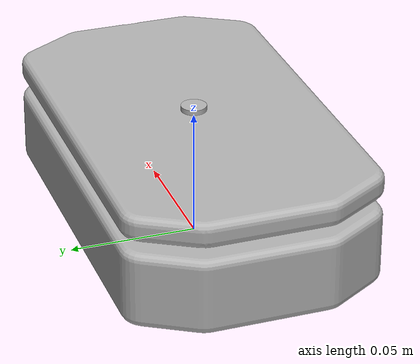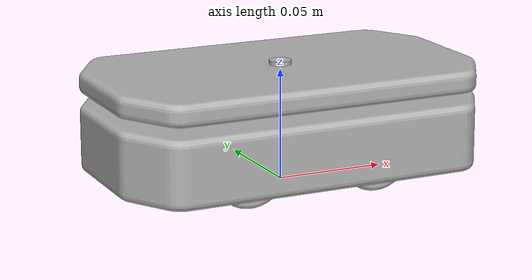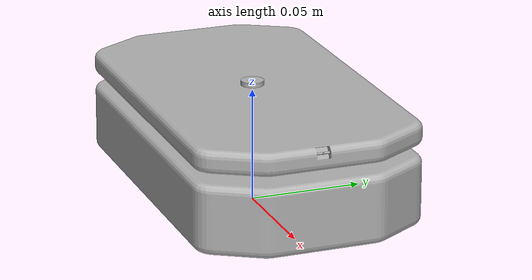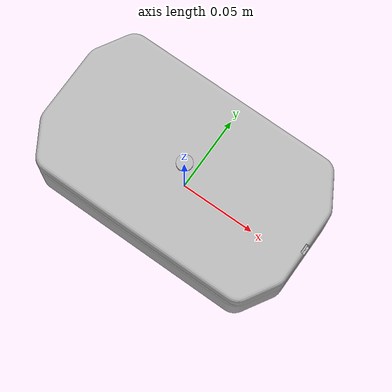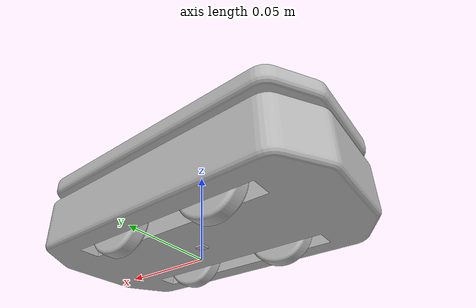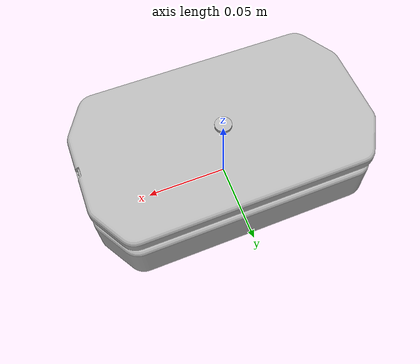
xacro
<?xml version="1.0" ?>
<robot name="robot_e" xmlns:xacro="http://www.ros.org/wiki/xacro">

<xacro:include filename="$(find robot_e_description)/urdf/materials.xacro" />
<xacro:include filename="$(find robot_e_description)/urdf/robot_e.trans" />
<xacro:include filename="$(find robot_e_description)/urdf/robot_e.gazebo" />

<link name="base_link">
  <inertial>
    <origin rpy="0 0 0" xyz="3.156036035416975e-05 1.8184825273202693e-07 0.030049216093113718"/>
    <mass value="4.834365794032958"/>
    <inertia ixx="0.004429" ixy="3e-06" ixz="4e-06" iyy="0.011802" iyz="-0.0" izz="0.014562"/>
  </inertial>
  <visual>
    <origin rpy="0 0 0" xyz="0 0 0"/>
    <geometry>
      <mesh filename="package://robot_e_description/meshes/base_link.stl" scale="0.001 0.001 0.001"/>
    </geometry>
    <material name="silver"/>
  </visual>
  <collision>
    <origin rpy="0 0 0" xyz="0 0 0"/>
    <geometry>
      <mesh filename="package://robot_e_description/meshes/base_link.stl" scale="0.001 0.001 0.001"/>
    </geometry>
  </collision>
</link>

<link name="cam_y_1">
  <inertial>
    <origin rpy="0 0 0" xyz="1.5826056200540783e-06 0.003000280773934918 -9.499491054887343e-10"/>
    <mass value="4.949592524115886e-05"/>
    <inertia ixx="0.0" ixy="-0.0" ixz="-0.0" iyy="0.0" iyz="0.0" izz="0.0"/>
  </inertial>
  <visual>
    <origin rpy="0 0 0" xyz="-0.0832 0.004386 -0.05"/>
    <geometry>
      <mesh filename="package://robot_e_description/meshes/cam_y_1.stl" scale="0.001 0.001 0.001"/>
    </geometry>
    <material name="silver"/>
  </visual>
  <collision>
    <origin rpy="0 0 0" xyz="-0.0832 0.004386 -0.05"/>
    <geometry>
      <mesh filename="package://robot_e_description/meshes/cam_y_1.stl" scale="0.001 0.001 0.001"/>
    </geometry>
  </collision>
</link>

<link name="lidar_1">
  <inertial>
    <origin rpy="0 0 0" xyz="-5.228407822368264e-13 0.0 0.0010000000000000078"/>
    <mass value="0.0012330751165340477"/>
    <inertia ixx="0.0" ixy="0.0" ixz="0.0" iyy="0.0" iyz="-0.0" izz="0.0"/>
  </inertial>
  <visual>
    <origin rpy="0 0 0" xyz="-0.0 -0.0 -0.0525"/>
    <geometry>
      <mesh filename="package://robot_e_description/meshes/lidar_1.stl" scale="0.001 0.001 0.001"/>
    </geometry>
    <material name="silver"/>
  </visual>
  <collision>
    <origin rpy="0 0 0" xyz="-0.0 -0.0 -0.0525"/>
    <geometry>
      <mesh filename="package://robot_e_description/meshes/lidar_1.stl" scale="0.001 0.001 0.001"/>
    </geometry>
  </collision>
</link>

<link name="imu_1">
  <inertial>
    <origin rpy="0 0 0" xyz="-6.227745252829209e-10 0.0 -0.0004999999999999987"/>
    <mass value="0.00019624999999999995"/>
    <inertia ixx="0.0" ixy="0.0" ixz="-0.0" iyy="0.0" iyz="0.0" izz="0.0"/>
  </inertial>
  <visual>
    <origin rpy="0 0 0" xyz="0.0 -0.0 -0.0075"/>
    <geometry>
      <mesh filename="package://robot_e_description/meshes/imu_1.stl" scale="0.001 0.001 0.001"/>
    </geometry>
    <material name="silver"/>
  </visual>
  <collision>
    <origin rpy="0 0 0" xyz="0.0 -0.0 -0.0075"/>
    <geometry>
      <mesh filename="package://robot_e_description/meshes/imu_1.stl" scale="0.001 0.001 0.001"/>
    </geometry>
  </collision>
</link>

<link name="camera_1">
  <inertial>
    <origin rpy="0 0 0" xyz="0.0002499981403349949 4.204841245959885e-08 -9.499490916109465e-10"/>
    <mass value="1.9729201864545034e-06"/>
    <inertia ixx="0.0" ixy="0.0" ixz="-0.0" iyy="0.0" iyz="0.0" izz="0.0"/>
  </inertial>
  <visual>
    <origin rpy="0 0 0" xyz="-0.0837 0.001266 -0.05"/>
    <geometry>
      <mesh filename="package://robot_e_description/meshes/camera_1.stl" scale="0.001 0.001 0.001"/>
    </geometry>
    <material name="silver"/>
  </visual>
  <collision>
    <origin rpy="0 0 0" xyz="-0.0837 0.001266 -0.05"/>
    <geometry>
      <mesh filename="package://robot_e_description/meshes/camera_1.stl" scale="0.001 0.001 0.001"/>
    </geometry>
  </collision>
</link>

<link name="right_f_w_1">
  <inertial>
    <origin rpy="0 0 0" xyz="4.470274150847331e-10 -0.005999999999999995 1.490116155467014e-10"/>
    <mass value="0.07221678064552067"/>
    <inertia ixx="6e-06" ixy="0.0" ixz="0.0" iyy="1.1e-05" iyz="0.0" izz="6e-06"/>
  </inertial>
  <visual>
    <origin rpy="0 0 0" xyz="-0.03 0.025 -0.0175"/>
    <geometry>
      <mesh filename="package://robot_e_description/meshes/right_f_w_1.stl" scale="0.001 0.001 0.001"/>
    </geometry>
    <material name="silver"/>
  </visual>
  <collision>
    <origin rpy="0 0 0" xyz="-0.03 0.025 -0.0175"/>
    <geometry>
      <mesh filename="package://robot_e_description/meshes/right_f_w_1.stl" scale="0.001 0.001 0.001"/>
    </geometry>
  </collision>
</link>

<link name="right_b_w_1">
  <inertial>
    <origin rpy="0 0 0" xyz="-4.470422677871344e-10 -0.005999999999999981 1.490116224855953e-10"/>
    <mass value="0.07221678064552069"/>
    <inertia ixx="6e-06" ixy="0.0" ixz="-0.0" iyy="1.1e-05" iyz="-0.0" izz="6e-06"/>
  </inertial>
  <visual>
    <origin rpy="0 0 0" xyz="0.03 0.025 -0.0175"/>
    <geometry>
      <mesh filename="package://robot_e_description/meshes/right_b_w_1.stl" scale="0.001 0.001 0.001"/>
    </geometry>
    <material name="silver"/>
  </visual>
  <collision>
    <origin rpy="0 0 0" xyz="0.03 0.025 -0.0175"/>
    <geometry>
      <mesh filename="package://robot_e_description/meshes/right_b_w_1.stl" scale="0.001 0.001 0.001"/>
    </geometry>
  </collision>
</link>

<link name="left_f_w_1">
  <inertial>
    <origin rpy="0 0 0" xyz="4.470274150847331e-10 0.006000000000000005 1.490116155467014e-10"/>
    <mass value="0.07221678064552067"/>
    <inertia ixx="6e-06" ixy="0.0" ixz="0.0" iyy="1.1e-05" iyz="0.0" izz="6e-06"/>
  </inertial>
  <visual>
    <origin rpy="0 0 0" xyz="-0.03 -0.025 -0.0175"/>
    <geometry>
      <mesh filename="package://robot_e_description/meshes/left_f_w_1.stl" scale="0.001 0.001 0.001"/>
    </geometry>
    <material name="silver"/>
  </visual>
  <collision>
    <origin rpy="0 0 0" xyz="-0.03 -0.025 -0.0175"/>
    <geometry>
      <mesh filename="package://robot_e_description/meshes/left_f_w_1.stl" scale="0.001 0.001 0.001"/>
    </geometry>
  </collision>
</link>

<link name="left_b_w_1">
  <inertial>
    <origin rpy="0 0 0" xyz="-4.470422677871344e-10 0.005999999999999995 1.4901161207725444e-10"/>
    <mass value="0.07221678064552069"/>
    <inertia ixx="6e-06" ixy="-0.0" ixz="-0.0" iyy="1.1e-05" iyz="-0.0" izz="6e-06"/>
  </inertial>
  <visual>
    <origin rpy="0 0 0" xyz="0.03 -0.025 -0.0175"/>
    <geometry>
      <mesh filename="package://robot_e_description/meshes/left_b_w_1.stl" scale="0.001 0.001 0.001"/>
    </geometry>
    <material name="silver"/>
  </visual>
  <collision>
    <origin rpy="0 0 0" xyz="0.03 -0.025 -0.0175"/>
    <geometry>
      <mesh filename="package://robot_e_description/meshes/left_b_w_1.stl" scale="0.001 0.001 0.001"/>
    </geometry>
  </collision>
</link>

<joint name="cam_y_j" type="continuous">
  <origin rpy="0 0 0" xyz="0.0832 -0.004386 0.05"/>
  <parent link="base_link"/>
  <child link="cam_y_1"/>
  <axis xyz="0.0 -1.0 0.0"/>
</joint>

<joint name="lidar_j" type="fixed">
  <origin rpy="0 0 0" xyz="0.0 0.0 0.0525"/>
  <parent link="base_link"/>
  <child link="lidar_1"/>
</joint>

<joint name="imu_j" type="fixed">
  <origin rpy="0 0 0" xyz="0.0 0.0 0.0075"/>
  <parent link="base_link"/>
  <child link="imu_1"/>
</joint>

<joint name="camera_j" type="fixed">
  <origin rpy="0 0 0" xyz="0.0005 0.00312 0.0"/>
  <parent link="cam_y_1"/>
  <child link="camera_1"/>
</joint>

<joint name="r_f_w_j" type="continuous">
  <origin rpy="0 0 0" xyz="0.03 -0.025 0.0175"/>
  <parent link="base_link"/>
  <child link="right_f_w_1"/>
  <axis xyz="0.0 1.0 0.0"/>
</joint>

<joint name="r_b_w_j" type="continuous">
  <origin rpy="0 0 0" xyz="-0.03 -0.025 0.0175"/>
  <parent link="base_link"/>
  <child link="right_b_w_1"/>
  <axis xyz="0.0 1.0 0.0"/>
</joint>

<joint name="l_f_w_j" type="continuous">
  <origin rpy="0 0 0" xyz="0.03 0.025 0.0175"/>
  <parent link="base_link"/>
  <child link="left_f_w_1"/>
  <axis xyz="0.0 1.0 0.0"/>
</joint>

<joint name="l_b_w_j" type="continuous">
  <origin rpy="0 0 0" xyz="-0.03 0.025 0.0175"/>
  <parent link="base_link"/>
  <child link="left_b_w_1"/>
  <axis xyz="0.0 1.0 0.0"/>
</joint>

</robot>

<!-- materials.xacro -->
<robot name="robot_e" xmlns:xacro="http://www.ros.org/wiki/xacro" >

<material name="silver">
  <color rgba="0.700 0.700 0.700 1.000"/>
</material>

</robot>

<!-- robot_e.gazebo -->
<robot name="robot_e" xmlns:xacro="http://www.ros.org/wiki/xacro" >

  <xacro:property name="body_color" value="Gazebo/Silver" />

  <gazebo>
    <plugin filename="libgazebo_ros_control.so" name="control"/>
  </gazebo>
  <gazebo reference="base_link">
    <material>${body_color}</material>
    <mu1>0.2</mu1>
    <mu2>0.2</mu2>
    <selfCollide>true</selfCollide>
    <gravity>true</gravity>
  </gazebo>

  <gazebo reference="cam_y_1">
    <material>${body_color}</material>
    <mu1>0.2</mu1>
    <mu2>0.2</mu2>
    <selfCollide>true</selfCollide>
  </gazebo>

  <gazebo reference="lidar_1">
    <material>${body_color}</material>
    <mu1>0.2</mu1>
    <mu2>0.2</mu2>
    <selfCollide>true</selfCollide>
  </gazebo>

  <gazebo reference="imu_1">
    <material>${body_color}</material>
    <mu1>0.2</mu1>
    <mu2>0.2</mu2>
    <selfCollide>true</selfCollide>
  </gazebo>

  <gazebo reference="camera_1">
    <material>${body_color}</material>
    <mu1>0.2</mu1>
    <mu2>0.2</mu2>
    <selfCollide>true</selfCollide>
  </gazebo>

  <gazebo reference="right_f_w_1">
    <material>${body_color}</material>
    <mu1>0.2</mu1>
    <mu2>0.2</mu2>
    <selfCollide>true</selfCollide>
  </gazebo>

  <gazebo reference="right_b_w_1">
    <material>${body_color}</material>
    <mu1>0.2</mu1>
    <mu2>0.2</mu2>
    <selfCollide>true</selfCollide>
  </gazebo>

  <gazebo reference="left_f_w_1">
    <material>${body_color}</material>
    <mu1>0.2</mu1>
    <mu2>0.2</mu2>
    <selfCollide>true</selfCollide>
  </gazebo>

  <gazebo reference="left_b_w_1">
    <material>${body_color}</material>
    <mu1>0.2</mu1>
    <mu2>0.2</mu2>
    <selfCollide>true</selfCollide>
  </gazebo>

  <!-- robot drive -->
  <gazebo>
    <plugin name="skid_steer_drive_controller" filename="libgazebo_ros_skid_steer_drive.so">
      <updateRate>20.0</updateRate>
      <leftFrontJoint>l_f_w_j</leftFrontJoint>
      <rightFrontJoint>r_f_w_j</rightFrontJoint>
      <leftRearJoint>l_b_w_j</leftRearJoint>
      <rightRearJoint>r_b_w_j</rightRearJoint>
      <wheelSeparation>0.4</wheelSeparation>
      <wheelDiameter>0.2</wheelDiameter>
      <robotBaseFrame>ebot_base</robotBaseFrame>
      <torque>100</torque>
      <topicName>cmd_vel</topicName>

      <commandTopic>cmd_vel</commandTopic>
      <odometryTopic>odom</odometryTopic>
      <odometryFrame>odom</odometryFrame>

      <broadcastTF>true</broadcastTF>
   </plugin>
  </gazebo>

  <!-- lidar -->

  <gazebo reference="lidar_1">
    <sensor type="ray" name="head_rplidar_sensor">
      <pose>0 0 0 0 0 0</pose>
      <visualize>false</visualize>
      <update_rate>40</update_rate>
      <ray>
        <scan>
          <horizontal>
            <samples>720</samples>
            <resolution>1</resolution>
            <min_angle>-1.57</min_angle>
            <max_angle>1.57</max_angle>
          </horizontal>
        </scan>
        <range>
          <min>0.2</min>   <!--actual range: 0.05 to 8m -->
          <max>8</max>
          <resolution>0.01</resolution>
        </range>
        <noise>
          <type>gaussian</type>
          <mean>0.0</mean>
          <stddev>0.01</stddev>
        </noise>
      </ray>
      <plugin name="gazebo_ros_head_rplidar_controller" filename="libgazebo_ros_laser.so">
        <topicName>/scan</topicName>
        <frameName>lidar_1</frameName>
      </plugin>
    </sensor>
  </gazebo>

  <!-- camera -->
  <gazebo reference="camera_1">
    <sensor type="camera" name="camera1">
      <update_rate>30.0</update_rate>
      <camera name="head">
        <horizontal_fov>1.3962634</horizontal_fov>
        <image>
          <width>800</width>
          <height>800</height>
          <format>R8G8B8</format>
        </image>
        <clip>
          <near>0.02</near>
          <far>300</far>
        </clip>
        <noise>
          <type>gaussian</type>
          <!-- Noise is sampled independently per pixel on each frame.
               That pixel's noise value is added to each of its color
               channels, which at that point lie in the range [0,1]. -->
          <mean>0.0</mean>
          <stddev>0.007</stddev>
        </noise>
      </camera>
      <plugin name="camera_controller" filename="libgazebo_ros_camera.so">
        <alwaysOn>true</alwaysOn>
        <updateRate>0.0</updateRate>
        <cameraName>/camera1</cameraName>
        <imageTopicName>image_raw</imageTopicName>
        <cameraInfoTopicName>camera_info</cameraInfoTopicName>
        <frameName>camera_link</frameName>
        <hackBaseline>0.07</hackBaseline>
        <distortionK1>0.0</distortionK1>
        <distortionK2>0.0</distortionK2>
        <distortionK3>0.0</distortionK3>
        <distortionT1>0.0</distortionT1>
        <distortionT2>0.0</distortionT2>
      </plugin>
    </sensor>
  </gazebo>

  <!-- imu -->
  <gazebo reference="imu_1">
    <gravity>true</gravity>
    <sensor name="imu_sensor" type="imu">
      <always_on>true</always_on>
      <update_rate>100</update_rate>
      <visualize>true</visualize>
      <topic>__default_topic__</topic>
      <plugin filename="libgazebo_ros_imu_sensor.so" name="imu_plugin">
        <topicName>imu</topicName>
        <bodyName>imu_link</bodyName>
        <updateRateHZ>10.0</updateRateHZ>
        <gaussianNoise>0.0</gaussianNoise>
        <xyzOffset>0 0 0</xyzOffset>
        <rpyOffset>0 0 0</rpyOffset>
        <frameName>imu_link</frameName>
        <initialOrientationAsReference>false</initialOrientationAsReference>
      </plugin>
      <pose>0 0 0 0 0 0</pose>
    </sensor>
  </gazebo>

</robot>
